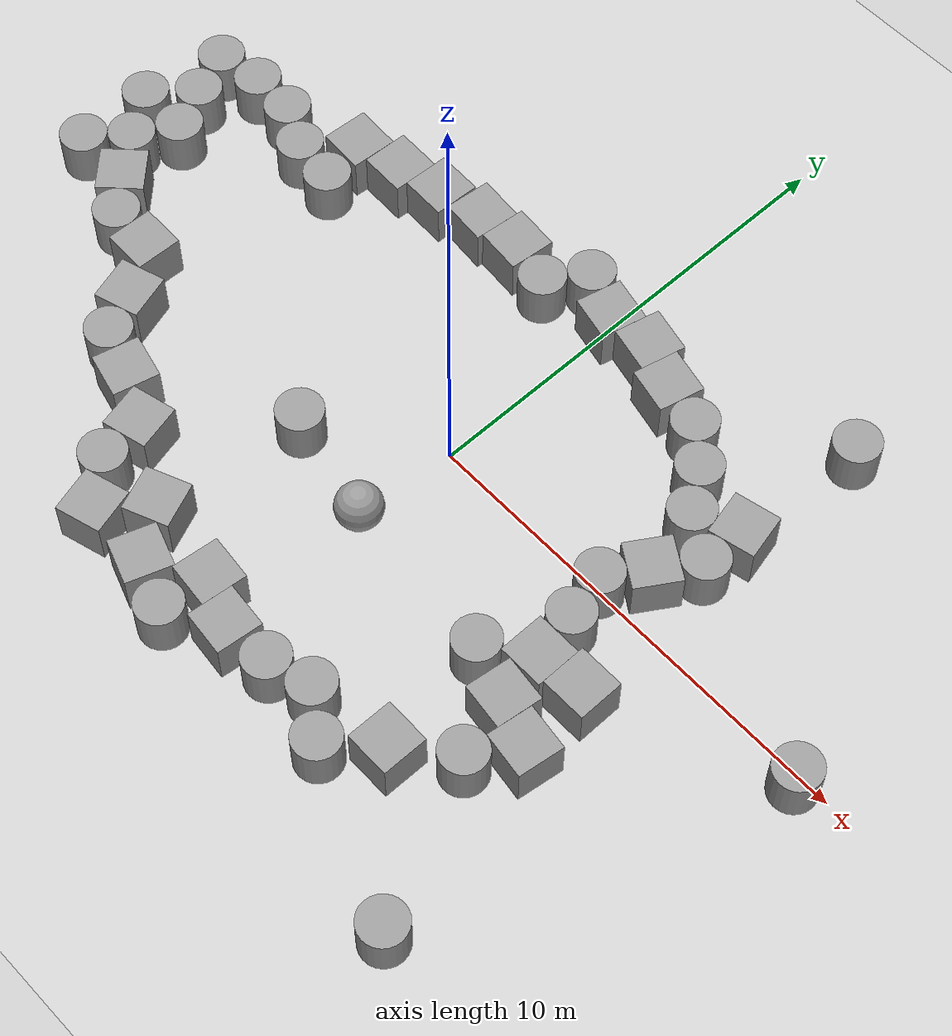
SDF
<sdf version="1.7">
 <world name="default">
  <light name="sun" type="directional">
   <pose>0 0 10 0 -0 0</pose>
   <diffuse>0.8 0.8 0.8 1</diffuse>
   <specular>0.2 0.2 0.2 1</specular>
   <attenuation>
    <range>1000</range>
    <constant>0.9</constant>
    <linear>0.01</linear>
    <quadratic>0.001</quadratic>
   </attenuation>
   <direction>-0.5 0.1 -0.9</direction>
   <spot><inner_angle>0</inner_angle><outer_angle>0</outer_angle><falloff>0</falloff></spot>
  </light>
  <model name="ground_plane">
   <static>1</static>
   <link name="link">
    <collision name="collision">
     <geometry><plane><normal>0 0 1</normal><size>100 100</size></plane></geometry>
     <surface>
      <contact><collide_bitmask>65535</collide_bitmask></contact>
      <friction><ode><mu>100</mu><mu2>50</mu2></ode></friction>
     </surface>
    </collision>
    <visual name="visual">
     <cast_shadows>0</cast_shadows>
     <geometry><plane><normal>0 0 1</normal><size>100 100</size></plane></geometry>
     <material>
      <script><uri>file://media/materials/scripts/gazebo.material</uri><name>Gazebo/Grey</name></script>
     </material>
    </visual>
   </link>
  </model>
  <gravity>0 0 -9.8</gravity>
  <magnetic_field>6e-06 2.3e-05 -4.2e-05</magnetic_field>
  <atmosphere type="adiabatic"/>
  <physics type="ode">
   <max_step_size>0.001</max_step_size>
   <real_time_factor>1</real_time_factor>
   <real_time_update_rate>1000</real_time_update_rate>
  </physics>
  <scene><ambient>0.4 0.4 0.4 1</ambient><background>0.7 0.7 0.7 1</background><shadows>1</shadows></scene>
  <audio><device>default</device></audio>
  <spherical_coordinates>
   <surface_model>EARTH_WGS84</surface_model>
   <latitude_deg>0</latitude_deg>
   <longitude_deg>0</longitude_deg>
   <elevation>0</elevation>
   <heading_deg>0</heading_deg>
  </spherical_coordinates>
  <model name="unit_cylinder">
   <pose>3.11485 -6.12273 0.500901 -0.001501 -0.001009 0.882739</pose>
   <link name="link">
    <inertial>
     <mass>1</mass>
     <inertia><ixx>0.145833</ixx><ixy>0</ixy><ixz>0</ixz><iyy>0.145833</iyy><iyz>0</iyz><izz>0.125</izz></inertia>
    </inertial>
    <collision name="collision">
     <geometry><cylinder><radius>0.5</radius><length>1</length></cylinder></geometry>
    </collision>
    <visual name="visual">
     <geometry><cylinder><radius>0.5</radius><length>1</length></cylinder></geometry>
     <material>
      <script><name>Gazebo/Grey</name><uri>file://media/materials/scripts/gazebo.material</uri></script>
     </material>
    </visual>
   </link>
  </model>
  <model name="unit_cylinder_0">
   <pose>5.10641 -4.37819 0.499996 3e-06 1e-06 -0.070556</pose>
   <link name="link">
    <inertial>
     <mass>1</mass>
     <inertia><ixx>0.145833</ixx><ixy>0</ixy><ixz>0</ixz><iyy>0.145833</iyy><iyz>0</iyz><izz>0.125</izz></inertia>
    </inertial>
    <collision name="collision">
     <geometry><cylinder><radius>0.5</radius><length>1</length></cylinder></geometry>
    </collision>
    <visual name="visual">
     <geometry><cylinder><radius>0.5</radius><length>1</length></cylinder></geometry>
     <material>
      <script><name>Gazebo/Grey</name><uri>file://media/materials/scripts/gazebo.material</uri></script>
     </material>
    </visual>
   </link>
  </model>
  <model name="unit_cylinder_1">
   <pose>-2.31501 -1.83064 0.499994 -3e-06 -1e-06 -0</pose>
   <link name="link">
    <inertial>
     <mass>1</mass>
     <inertia><ixx>0.145833</ixx><ixy>0</ixy><ixz>0</ixz><iyy>0.145833</iyy><iyz>0</iyz><izz>0.125</izz></inertia>
    </inertial>
    <collision name="collision">
     <geometry><cylinder><radius>0.5</radius><length>1</length></cylinder></geometry>
    </collision>
    <visual name="visual">
     <geometry><cylinder><radius>0.5</radius><length>1</length></cylinder></geometry>
     <material>
      <script><name>Gazebo/Grey</name><uri>file://media/materials/scripts/gazebo.material</uri></script>
     </material>
    </visual>
   </link>
  </model>
  <model name="unit_box">
   <pose>-5.38043 -3.66271 0.5 0 0 -0.238635</pose>
   <link name="link">
    <inertial>
     <mass>1</mass>
     <inertia>
      <ixx>0.166667</ixx>
      <ixy>0</ixy>
      <ixz>0</ixz>
      <iyy>0.166667</iyy>
      <iyz>0</iyz>
      <izz>0.166667</izz>
     </inertia>
    </inertial>
    <collision name="collision"><geometry><box><size>1 1 1</size></box></geometry></collision>
    <visual name="visual">
     <geometry><box><size>1 1 1</size></box></geometry>
     <material>
      <script><name>Gazebo/Grey</name><uri>file://media/materials/scripts/gazebo.material</uri></script>
     </material>
    </visual>
   </link>
  </model>
  <model name="unit_box_0">
   <pose>-2.6748 -5.08006 0.5 0 -0 0.397561</pose>
   <link name="link">
    <inertial>
     <mass>1</mass>
     <inertia>
      <ixx>0.166667</ixx>
      <ixy>0</ixy>
      <ixz>0</ixz>
      <iyy>0.166667</iyy>
      <iyz>0</iyz>
      <izz>0.166667</izz>
     </inertia>
    </inertial>
    <collision name="collision"><geometry><box><size>1 1 1</size></box></geometry></collision>
    <visual name="visual">
     <geometry><box><size>1 1 1</size></box></geometry>
     <material>
      <script><name>Gazebo/Grey</name><uri>file://media/materials/scripts/gazebo.material</uri></script>
     </material>
    </visual>
   </link>
  </model>
  <model name="unit_box_1">
   <pose>-0.755334 -5.38736 0.499996 -0 9e-06 -0.101758</pose>
   <link name="link">
    <inertial>
     <mass>1</mass>
     <inertia>
      <ixx>0.166667</ixx>
      <ixy>0</ixy>
      <ixz>0</ixz>
      <iyy>0.166667</iyy>
      <iyz>0</iyz>
      <izz>0.166667</izz>
     </inertia>
    </inertial>
    <collision name="collision"><geometry><box><size>1 1 1</size></box></geometry></collision>
    <visual name="visual">
     <geometry><box><size>1 1 1</size></box></geometry>
     <material>
      <script><name>Gazebo/Grey</name><uri>file://media/materials/scripts/gazebo.material</uri></script>
     </material>
    </visual>
   </link>
  </model>
  <model name="unit_box_2">
   <pose>4.59415 -2.0162 0.499995 1e-05 0 0.002279</pose>
   <link name="link">
    <inertial>
     <mass>1</mass>
     <inertia>
      <ixx>0.166667</ixx>
      <ixy>0</ixy>
      <ixz>0</ixz>
      <iyy>0.166667</iyy>
      <iyz>0</iyz>
      <izz>0.166667</izz>
     </inertia>
    </inertial>
    <collision name="collision"><geometry><box><size>1 1 1</size></box></geometry></collision>
    <visual name="visual">
     <geometry><box><size>1 1 1</size></box></geometry>
     <material>
      <script><name>Gazebo/Grey</name><uri>file://media/materials/scripts/gazebo.material</uri></script>
     </material>
    </visual>
   </link>
  </model>
  <model name="unit_cylinder_2">
   <pose>-1.42799 3.81989 0.499992 -2e-06 4e-06 0.279191</pose>
   <link name="link">
    <inertial>
     <mass>1</mass>
     <inertia><ixx>0.145833</ixx><ixy>0</ixy><ixz>0</ixz><iyy>0.145833</iyy><iyz>0</iyz><izz>0.125</izz></inertia>
    </inertial>
    <collision name="collision">
     <geometry><cylinder><radius>0.5</radius><length>1</length></cylinder></geometry>
    </collision>
    <visual name="visual">
     <geometry><cylinder><radius>0.5</radius><length>1</length></cylinder></geometry>
     <material>
      <script><name>Gazebo/Grey</name><uri>file://media/materials/scripts/gazebo.material</uri></script>
     </material>
    </visual>
   </link>
  </model>
  <model name="unit_box_3">
   <pose>4.69538 0.800661 0.5 0 0 -0.566337</pose>
   <link name="link">
    <inertial>
     <mass>1</mass>
     <inertia>
      <ixx>0.166667</ixx>
      <ixy>0</ixy>
      <ixz>0</ixz>
      <iyy>0.166667</iyy>
      <iyz>0</iyz>
      <izz>0.166667</izz>
     </inertia>
    </inertial>
    <collision name="collision"><geometry><box><size>1 1 1</size></box></geometry></collision>
    <visual name="visual">
     <geometry><box><size>1 1 1</size></box></geometry>
     <material>
      <script><name>Gazebo/Grey</name><uri>file://media/materials/scripts/gazebo.material</uri></script>
     </material>
    </visual>
   </link>
  </model>
  <model name="unit_cylinder_4">
   <pose>-6.30975 2.36731 0.499994 -4e-06 2e-06 0.055566</pose>
   <link name="link">
    <inertial>
     <mass>1</mass>
     <inertia><ixx>0.145833</ixx><ixy>0</ixy><ixz>0</ixz><iyy>0.145833</iyy><iyz>0</iyz><izz>0.125</izz></inertia>
    </inertial>
    <collision name="collision">
     <geometry><cylinder><radius>0.5</radius><length>1</length></cylinder></geometry>
    </collision>
    <visual name="visual">
     <geometry><cylinder><radius>0.5</radius><length>1</length></cylinder></geometry>
     <material>
      <script><name>Gazebo/Grey</name><uri>file://media/materials/scripts/gazebo.material</uri></script>
     </material>
    </visual>
   </link>
  </model>
  <model name="unit_cylinder_5">
   <pose>-10.5105 -0.676053 0.499992 -3e-06 2e-06 -0.258467</pose>
   <link name="link">
    <inertial>
     <mass>1</mass>
     <inertia><ixx>0.145833</ixx><ixy>0</ixy><ixz>0</ixz><iyy>0.145833</iyy><iyz>0</iyz><izz>0.125</izz></inertia>
    </inertial>
    <collision name="collision">
     <geometry><cylinder><radius>0.5</radius><length>1</length></cylinder></geometry>
    </collision>
    <visual name="visual">
     <geometry><cylinder><radius>0.5</radius><length>1</length></cylinder></geometry>
     <material>
      <script><name>Gazebo/Grey</name><uri>file://media/materials/scripts/gazebo.material</uri></script>
     </material>
    </visual>
   </link>
  </model>
  <model name="unit_cylinder_8">
   <pose>-10.5245 0.990949 0.50432 0.002429 -0.008335 -1.02696</pose>
   <link name="link">
    <inertial>
     <mass>1</mass>
     <inertia><ixx>0.145833</ixx><ixy>0</ixy><ixz>0</ixz><iyy>0.145833</iyy><iyz>0</iyz><izz>0.125</izz></inertia>
    </inertial>
    <collision name="collision">
     <geometry><cylinder><radius>0.5</radius><length>1</length></cylinder></geometry>
    </collision>
    <visual name="visual">
     <geometry><cylinder><radius>0.5</radius><length>1</length></cylinder></geometry>
     <material>
      <script><name>Gazebo/Grey</name><uri>file://media/materials/scripts/gazebo.material</uri></script>
     </material>
    </visual>
   </link>
  </model>
  <model name="unit_cylinder_9">
   <pose>-9.82454 1.86312 0.499998 3e-06 -2e-06 0.091242</pose>
   <link name="link">
    <inertial>
     <mass>1</mass>
     <inertia><ixx>0.145833</ixx><ixy>0</ixy><ixz>0</ixz><iyy>0.145833</iyy><iyz>0</iyz><izz>0.125</izz></inertia>
    </inertial>
    <collision name="collision">
     <geometry><cylinder><radius>0.5</radius><length>1</length></cylinder></geometry>
    </collision>
    <visual name="visual">
     <geometry><cylinder><radius>0.5</radius><length>1</length></cylinder></geometry>
     <material>
      <script><name>Gazebo/Grey</name><uri>file://media/materials/scripts/gazebo.material</uri></script>
     </material>
    </visual>
   </link>
  </model>
  <model name="unit_cylinder_10">
   <pose>-8.5216 -1.39437 0.499992 -3e-06 2e-06 0.125939</pose>
   <link name="link">
    <inertial>
     <mass>1</mass>
     <inertia><ixx>0.145833</ixx><ixy>0</ixy><ixz>0</ixz><iyy>0.145833</iyy><iyz>0</iyz><izz>0.125</izz></inertia>
    </inertial>
    <collision name="collision">
     <geometry><cylinder><radius>0.5</radius><length>1</length></cylinder></geometry>
    </collision>
    <visual name="visual">
     <geometry><cylinder><radius>0.5</radius><length>1</length></cylinder></geometry>
     <material>
      <script><name>Gazebo/Grey</name><uri>file://media/materials/scripts/gazebo.material</uri></script>
     </material>
    </visual>
   </link>
  </model>
  <model name="unit_box_4">
   <pose>-9.22329 -0.681301 0.5 0 0 -0.794618</pose>
   <link name="link">
    <inertial>
     <mass>1</mass>
     <inertia>
      <ixx>0.166667</ixx>
      <ixy>0</ixy>
      <ixz>0</ixz>
      <iyy>0.166667</iyy>
      <iyz>0</iyz>
      <izz>0.166667</izz>
     </inertia>
    </inertial>
    <collision name="collision"><geometry><box><size>1 1 1</size></box></geometry></collision>
    <visual name="visual">
     <geometry><box><size>1 1 1</size></box></geometry>
     <material>
      <script><name>Gazebo/Grey</name><uri>file://media/materials/scripts/gazebo.material</uri></script>
     </material>
    </visual>
   </link>
  </model>
  <model name="unit_cylinder_11">
   <pose>-9.86764 0.090085 0.499992 -3e-06 2e-06 0.112748</pose>
   <link name="link">
    <inertial>
     <mass>1</mass>
     <inertia><ixx>0.145833</ixx><ixy>0</ixy><ixz>0</ixz><iyy>0.145833</iyy><iyz>0</iyz><izz>0.125</izz></inertia>
    </inertial>
    <collision name="collision">
     <geometry><cylinder><radius>0.5</radius><length>1</length></cylinder></geometry>
    </collision>
    <visual name="visual">
     <geometry><cylinder><radius>0.5</radius><length>1</length></cylinder></geometry>
     <material>
      <script><name>Gazebo/Grey</name><uri>file://media/materials/scripts/gazebo.material</uri></script>
     </material>
    </visual>
   </link>
  </model>
  <model name="unit_cylinder_12">
   <pose>-9.37799 0.9672 0.499992 -3e-06 2e-06 0.049158</pose>
   <link name="link">
    <inertial>
     <mass>1</mass>
     <inertia><ixx>0.145833</ixx><ixy>0</ixy><ixz>0</ixz><iyy>0.145833</iyy><iyz>0</iyz><izz>0.125</izz></inertia>
    </inertial>
    <collision name="collision">
     <geometry><cylinder><radius>0.5</radius><length>1</length></cylinder></geometry>
    </collision>
    <visual name="visual">
     <geometry><cylinder><radius>0.5</radius><length>1</length></cylinder></geometry>
     <material>
      <script><name>Gazebo/Grey</name><uri>file://media/materials/scripts/gazebo.material</uri></script>
     </material>
    </visual>
   </link>
  </model>
  <model name="unit_box_5">
   <pose>-7.52267 -1.47117 0.499995 1e-05 -0 -0.02118</pose>
   <link name="link">
    <inertial>
     <mass>1</mass>
     <inertia>
      <ixx>0.166667</ixx>
      <ixy>0</ixy>
      <ixz>0</ixz>
      <iyy>0.166667</iyy>
      <iyz>0</iyz>
      <izz>0.166667</izz>
     </inertia>
    </inertial>
    <collision name="collision"><geometry><box><size>1 1 1</size></box></geometry></collision>
    <visual name="visual">
     <geometry><box><size>1 1 1</size></box></geometry>
     <material>
      <script><name>Gazebo/Grey</name><uri>file://media/materials/scripts/gazebo.material</uri></script>
     </material>
    </visual>
   </link>
  </model>
  <model name="unit_box_6">
   <pose>-6.79895 -2.43248 0.499996 0 -8e-06 0.300765</pose>
   <link name="link">
    <inertial>
     <mass>1</mass>
     <inertia>
      <ixx>0.166667</ixx>
      <ixy>0</ixy>
      <ixz>0</ixz>
      <iyy>0.166667</iyy>
      <iyz>0</iyz>
      <izz>0.166667</izz>
     </inertia>
    </inertial>
    <collision name="collision"><geometry><box><size>1 1 1</size></box></geometry></collision>
    <visual name="visual">
     <geometry><box><size>1 1 1</size></box></geometry>
     <material>
      <script><name>Gazebo/Grey</name><uri>file://media/materials/scripts/gazebo.material</uri></script>
     </material>
    </visual>
   </link>
  </model>
  <model name="unit_cylinder_13">
   <pose>-6.33653 -3.33923 0.499996 3e-06 1e-06 -0.050899</pose>
   <link name="link">
    <inertial>
     <mass>1</mass>
     <inertia><ixx>0.145833</ixx><ixy>0</ixy><ixz>0</ixz><iyy>0.145833</iyy><iyz>0</iyz><izz>0.125</izz></inertia>
    </inertial>
    <collision name="collision">
     <geometry><cylinder><radius>0.5</radius><length>1</length></cylinder></geometry>
    </collision>
    <visual name="visual">
     <geometry><cylinder><radius>0.5</radius><length>1</length></cylinder></geometry>
     <material>
      <script><name>Gazebo/Grey</name><uri>file://media/materials/scripts/gazebo.material</uri></script>
     </material>
    </visual>
   </link>
  </model>
  <model name="unit_box_7">
   <pose>-4.30232 -4.20362 0.499999 -2e-06 -0 0.245898</pose>
   <link name="link">
    <inertial>
     <mass>1</mass>
     <inertia>
      <ixx>0.166667</ixx>
      <ixy>0</ixy>
      <ixz>0</ixz>
      <iyy>0.166667</iyy>
      <iyz>0</iyz>
      <izz>0.166667</izz>
     </inertia>
    </inertial>
    <collision name="collision"><geometry><box><size>1 1 1</size></box></geometry></collision>
    <visual name="visual">
     <geometry><box><size>1 1 1</size></box></geometry>
     <material>
      <script><name>Gazebo/Grey</name><uri>file://media/materials/scripts/gazebo.material</uri></script>
     </material>
    </visual>
   </link>
  </model>
  <model name="unit_cylinder_14">
   <pose>-4.17187 -5.20214 0.499994 -3e-06 -2e-06 -0.301955</pose>
   <link name="link">
    <inertial>
     <mass>1</mass>
     <inertia><ixx>0.145833</ixx><ixy>0</ixy><ixz>0</ixz><iyy>0.145833</iyy><iyz>0</iyz><izz>0.125</izz></inertia>
    </inertial>
    <collision name="collision">
     <geometry><cylinder><radius>0.5</radius><length>1</length></cylinder></geometry>
    </collision>
    <visual name="visual">
     <geometry><cylinder><radius>0.5</radius><length>1</length></cylinder></geometry>
     <material>
      <script><name>Gazebo/Grey</name><uri>file://media/materials/scripts/gazebo.material</uri></script>
     </material>
    </visual>
   </link>
  </model>
  <model name="unit_box_8">
   <pose>-3.43631 -6.0308 0.499999 5e-06 3e-06 0.280792</pose>
   <link name="link">
    <inertial>
     <mass>1</mass>
     <inertia>
      <ixx>0.166667</ixx>
      <ixy>0</ixy>
      <ixz>0</ixz>
      <iyy>0.166667</iyy>
      <iyz>0</iyz>
      <izz>0.166667</izz>
     </inertia>
    </inertial>
    <collision name="collision"><geometry><box><size>1 1 1</size></box></geometry></collision>
    <visual name="visual">
     <geometry><box><size>1 1 1</size></box></geometry>
     <material>
      <script><name>Gazebo/Grey</name><uri>file://media/materials/scripts/gazebo.material</uri></script>
     </material>
    </visual>
   </link>
  </model>
  <model name="unit_box_9">
   <pose>-1.93277 -6.07648 0.5 -2e-06 -2e-06 -0.3319</pose>
   <link name="link">
    <inertial>
     <mass>1</mass>
     <inertia>
      <ixx>0.166667</ixx>
      <ixy>0</ixy>
      <ixz>0</ixz>
      <iyy>0.166667</iyy>
      <iyz>0</iyz>
      <izz>0.166667</izz>
     </inertia>
    </inertial>
    <collision name="collision"><geometry><box><size>1 1 1</size></box></geometry></collision>
    <visual name="visual">
     <geometry><box><size>1 1 1</size></box></geometry>
     <material>
      <script><name>Gazebo/Grey</name><uri>file://media/materials/scripts/gazebo.material</uri></script>
     </material>
    </visual>
   </link>
  </model>
  <model name="unit_cylinder_15">
   <pose>-0.899488 -6.48619 0.499993 -4e-06 -1e-06 0.103692</pose>
   <link name="link">
    <inertial>
     <mass>1</mass>
     <inertia><ixx>0.145833</ixx><ixy>0</ixy><ixz>0</ixz><iyy>0.145833</iyy><iyz>0</iyz><izz>0.125</izz></inertia>
    </inertial>
    <collision name="collision">
     <geometry><cylinder><radius>0.5</radius><length>1</length></cylinder></geometry>
    </collision>
    <visual name="visual">
     <geometry><cylinder><radius>0.5</radius><length>1</length></cylinder></geometry>
     <material>
      <script><name>Gazebo/Grey</name><uri>file://media/materials/scripts/gazebo.material</uri></script>
     </material>
    </visual>
   </link>
  </model>
  <model name="unit_box_10">
   <pose>0.206187 -5.81808 0.499996 0 9e-06 -0.101773</pose>
   <link name="link">
    <inertial>
     <mass>1</mass>
     <inertia>
      <ixx>0.166667</ixx>
      <ixy>0</ixy>
      <ixz>0</ixz>
      <iyy>0.166667</iyy>
      <iyz>0</iyz>
      <izz>0.166667</izz>
     </inertia>
    </inertial>
    <collision name="collision"><geometry><box><size>1 1 1</size></box></geometry></collision>
    <visual name="visual">
     <geometry><box><size>1 1 1</size></box></geometry>
     <material>
      <script><name>Gazebo/Grey</name><uri>file://media/materials/scripts/gazebo.material</uri></script>
     </material>
    </visual>
   </link>
  </model>
  <model name="unit_cylinder_16">
   <pose>1.27591 -5.74112 0.499993 -3e-06 -1e-06 0.045007</pose>
   <link name="link">
    <inertial>
     <mass>1</mass>
     <inertia><ixx>0.145833</ixx><ixy>0</ixy><ixz>0</ixz><iyy>0.145833</iyy><iyz>0</iyz><izz>0.125</izz></inertia>
    </inertial>
    <collision name="collision">
     <geometry><cylinder><radius>0.5</radius><length>1</length></cylinder></geometry>
    </collision>
    <visual name="visual">
     <geometry><cylinder><radius>0.5</radius><length>1</length></cylinder></geometry>
     <material>
      <script><name>Gazebo/Grey</name><uri>file://media/materials/scripts/gazebo.material</uri></script>
     </material>
    </visual>
   </link>
  </model>
  <model name="unit_cylinder_17">
   <pose>2.24009 -5.47511 0.499996 3e-06 -0 0.387368</pose>
   <link name="link">
    <inertial>
     <mass>1</mass>
     <inertia><ixx>0.145833</ixx><ixy>0</ixy><ixz>0</ixz><iyy>0.145833</iyy><iyz>0</iyz><izz>0.125</izz></inertia>
    </inertial>
    <collision name="collision">
     <geometry><cylinder><radius>0.5</radius><length>1</length></cylinder></geometry>
    </collision>
    <visual name="visual">
     <geometry><cylinder><radius>0.5</radius><length>1</length></cylinder></geometry>
     <material>
      <script><name>Gazebo/Grey</name><uri>file://media/materials/scripts/gazebo.material</uri></script>
     </material>
    </visual>
   </link>
  </model>
  <model name="unit_box_11">
   <pose>4.00204 -5.22206 0.499995 1e-05 0 -0.009211</pose>
   <link name="link">
    <inertial>
     <mass>1</mass>
     <inertia>
      <ixx>0.166667</ixx>
      <ixy>0</ixy>
      <ixz>0</ixz>
      <iyy>0.166667</iyy>
      <iyz>0</iyz>
      <izz>0.166667</izz>
     </inertia>
    </inertial>
    <collision name="collision"><geometry><box><size>1 1 1</size></box></geometry></collision>
    <visual name="visual">
     <geometry><box><size>1 1 1</size></box></geometry>
     <material>
      <script><name>Gazebo/Grey</name><uri>file://media/materials/scripts/gazebo.material</uri></script>
     </material>
    </visual>
   </link>
  </model>
  <model name="unit_box_12">
   <pose>4.76905 -3.07765 0.5 0 0 -0.130074</pose>
   <link name="link">
    <inertial>
     <mass>1</mass>
     <inertia>
      <ixx>0.166667</ixx>
      <ixy>0</ixy>
      <ixz>0</ixz>
      <iyy>0.166667</iyy>
      <iyz>0</iyz>
      <izz>0.166667</izz>
     </inertia>
    </inertial>
    <collision name="collision"><geometry><box><size>1 1 1</size></box></geometry></collision>
    <visual name="visual">
     <geometry><box><size>1 1 1</size></box></geometry>
     <material>
      <script><name>Gazebo/Grey</name><uri>file://media/materials/scripts/gazebo.material</uri></script>
     </material>
    </visual>
   </link>
  </model>
  <model name="unit_box_13">
   <pose>5.73118 -3.45444 0.499995 0 -1e-05 -0.141358</pose>
   <link name="link">
    <inertial>
     <mass>1</mass>
     <inertia>
      <ixx>0.166667</ixx>
      <ixy>0</ixy>
      <ixz>0</ixz>
      <iyy>0.166667</iyy>
      <iyz>0</iyz>
      <izz>0.166667</izz>
     </inertia>
    </inertial>
    <collision name="collision"><geometry><box><size>1 1 1</size></box></geometry></collision>
    <visual name="visual">
     <geometry><box><size>1 1 1</size></box></geometry>
     <material>
      <script><name>Gazebo/Grey</name><uri>file://media/materials/scripts/gazebo.material</uri></script>
     </material>
    </visual>
   </link>
  </model>
  <model name="unit_box_14">
   <pose>5.59429 -1.90812 0.499995 -1e-05 0 0.002283</pose>
   <link name="link">
    <inertial>
     <mass>1</mass>
     <inertia>
      <ixx>0.166667</ixx>
      <ixy>0</ixy>
      <ixz>0</ixz>
      <iyy>0.166667</iyy>
      <iyz>0</iyz>
      <izz>0.166667</izz>
     </inertia>
    </inertial>
    <collision name="collision"><geometry><box><size>1 1 1</size></box></geometry></collision>
    <visual name="visual">
     <geometry><box><size>1 1 1</size></box></geometry>
     <material>
      <script><name>Gazebo/Grey</name><uri>file://media/materials/scripts/gazebo.material</uri></script>
     </material>
    </visual>
   </link>
  </model>
  <model name="unit_cylinder_18">
   <pose>3.62491 -2.6871 0.499992 -3e-06 2e-06 0.134264</pose>
   <link name="link">
    <inertial>
     <mass>1</mass>
     <inertia><ixx>0.145833</ixx><ixy>0</ixy><ixz>0</ixz><iyy>0.145833</iyy><iyz>0</iyz><izz>0.125</izz></inertia>
    </inertial>
    <collision name="collision">
     <geometry><cylinder><radius>0.5</radius><length>1</length></cylinder></geometry>
    </collision>
    <visual name="visual">
     <geometry><cylinder><radius>0.5</radius><length>1</length></cylinder></geometry>
     <material>
      <script><name>Gazebo/Grey</name><uri>file://media/materials/scripts/gazebo.material</uri></script>
     </material>
    </visual>
   </link>
  </model>
  <model name="unit_cylinder_19">
   <pose>4.40454 -1.01495 0.499996 4e-06 1e-06 0.085321</pose>
   <link name="link">
    <inertial>
     <mass>1</mass>
     <inertia><ixx>0.145833</ixx><ixy>0</ixy><ixz>0</ixz><iyy>0.145833</iyy><iyz>0</iyz><izz>0.125</izz></inertia>
    </inertial>
    <collision name="collision">
     <geometry><cylinder><radius>0.5</radius><length>1</length></cylinder></geometry>
    </collision>
    <visual name="visual">
     <geometry><cylinder><radius>0.5</radius><length>1</length></cylinder></geometry>
     <material>
      <script><name>Gazebo/Grey</name><uri>file://media/materials/scripts/gazebo.material</uri></script>
     </material>
    </visual>
   </link>
  </model>
  <model name="unit_cylinder_20">
   <pose>4.16122 -0.044751 0.499991 0 -0 0.014832</pose>
   <link name="link">
    <inertial>
     <mass>1</mass>
     <inertia><ixx>0.145833</ixx><ixy>0</ixy><ixz>0</ixz><iyy>0.145833</iyy><iyz>0</iyz><izz>0.125</izz></inertia>
    </inertial>
    <collision name="collision">
     <geometry><cylinder><radius>0.5</radius><length>1</length></cylinder></geometry>
    </collision>
    <visual name="visual">
     <geometry><cylinder><radius>0.5</radius><length>1</length></cylinder></geometry>
     <material>
      <script><name>Gazebo/Grey</name><uri>file://media/materials/scripts/gazebo.material</uri></script>
     </material>
    </visual>
   </link>
  </model>
  <model name="unit_cylinder_3">
   <pose>5.50091 5.55152 0.499996 -3e-06 3e-06 0</pose>
   <link name="link">
    <inertial>
     <mass>1</mass>
     <inertia><ixx>0.145833</ixx><ixy>0</ixy><ixz>0</ixz><iyy>0.145833</iyy><iyz>0</iyz><izz>0.125</izz></inertia>
    </inertial>
    <collision name="collision">
     <geometry><cylinder><radius>0.5</radius><length>1</length></cylinder></geometry>
    </collision>
    <visual name="visual">
     <geometry><cylinder><radius>0.5</radius><length>1</length></cylinder></geometry>
     <material>
      <script><name>Gazebo/Grey</name><uri>file://media/materials/scripts/gazebo.material</uri></script>
     </material>
    </visual>
   </link>
  </model>
  <model name="unit_cylinder_6">
   <pose>6.51583 -7.57573 0.499996 -3e-06 3e-06 0</pose>
   <link name="link">
    <inertial>
     <mass>1</mass>
     <inertia><ixx>0.145833</ixx><ixy>0</ixy><ixz>0</ixz><iyy>0.145833</iyy><iyz>0</iyz><izz>0.125</izz></inertia>
    </inertial>
    <collision name="collision">
     <geometry><cylinder><radius>0.5</radius><length>1</length></cylinder></geometry>
    </collision>
    <visual name="visual">
     <geometry><cylinder><radius>0.5</radius><length>1</length></cylinder></geometry>
     <material>
      <script><name>Gazebo/Grey</name><uri>file://media/materials/scripts/gazebo.material</uri></script>
     </material>
    </visual>
   </link>
  </model>
  <model name="unit_cylinder_7">
   <pose>9.3797 -0.241947 0.499996 4e-06 4e-06 -0</pose>
   <link name="link">
    <inertial>
     <mass>1</mass>
     <inertia><ixx>0.145833</ixx><ixy>0</ixy><ixz>0</ixz><iyy>0.145833</iyy><iyz>0</iyz><izz>0.125</izz></inertia>
    </inertial>
    <collision name="collision">
     <geometry><cylinder><radius>0.5</radius><length>1</length></cylinder></geometry>
    </collision>
    <visual name="visual">
     <geometry><cylinder><radius>0.5</radius><length>1</length></cylinder></geometry>
     <material>
      <script><name>Gazebo/Grey</name><uri>file://media/materials/scripts/gazebo.material</uri></script>
     </material>
    </visual>
   </link>
  </model>
  <model name="unit_cylinder_21">
   <pose>5.30001 1.60308 0.499994 5e-06 -1e-06 -0.454593</pose>
   <link name="link">
    <inertial>
     <mass>1</mass>
     <inertia><ixx>0.145833</ixx><ixy>0</ixy><ixz>0</ixz><iyy>0.145833</iyy><iyz>0</iyz><izz>0.125</izz></inertia>
    </inertial>
    <collision name="collision">
     <geometry><cylinder><radius>0.5</radius><length>1</length></cylinder></geometry>
    </collision>
    <visual name="visual">
     <geometry><cylinder><radius>0.5</radius><length>1</length></cylinder></geometry>
     <material>
      <script><name>Gazebo/Grey</name><uri>file://media/materials/scripts/gazebo.material</uri></script>
     </material>
    </visual>
   </link>
  </model>
  <model name="unit_cylinder_22">
   <pose>4.38364 2.16429 0.499997 4e-06 -2e-06 -0.123408</pose>
   <link name="link">
    <inertial>
     <mass>1</mass>
     <inertia><ixx>0.145833</ixx><ixy>0</ixy><ixz>0</ixz><iyy>0.145833</iyy><iyz>0</iyz><izz>0.125</izz></inertia>
    </inertial>
    <collision name="collision">
     <geometry><cylinder><radius>0.5</radius><length>1</length></cylinder></geometry>
    </collision>
    <visual name="visual">
     <geometry><cylinder><radius>0.5</radius><length>1</length></cylinder></geometry>
     <material>
      <script><name>Gazebo/Grey</name><uri>file://media/materials/scripts/gazebo.material</uri></script>
     </material>
    </visual>
   </link>
  </model>
  <model name="unit_box_15">
   <pose>5.30426 2.62929 0.500002 0 4e-06 0.222042</pose>
   <link name="link">
    <inertial>
     <mass>1</mass>
     <inertia>
      <ixx>0.166667</ixx>
      <ixy>0</ixy>
      <ixz>0</ixz>
      <iyy>0.166667</iyy>
      <iyz>0</iyz>
      <izz>0.166667</izz>
     </inertia>
    </inertial>
    <collision name="collision"><geometry><box><size>1 1 1</size></box></geometry></collision>
    <visual name="visual">
     <geometry><box><size>1 1 1</size></box></geometry>
     <material>
      <script><name>Gazebo/Grey</name><uri>file://media/materials/scripts/gazebo.material</uri></script>
     </material>
    </visual>
   </link>
  </model>
  <model name="unit_sphere">
   <pose>-0.144426 -2.23815 0.5 0 -0 0</pose>
   <link name="link">
    <inertial>
     <mass>1</mass>
     <inertia><ixx>0.1</ixx><ixy>0</ixy><ixz>0</ixz><iyy>0.1</iyy><iyz>0</iyz><izz>0.1</izz></inertia>
    </inertial>
    <collision name="collision"><geometry><sphere><radius>0.5</radius></sphere></geometry></collision>
    <visual name="visual">
     <geometry><sphere><radius>0.5</radius></sphere></geometry>
     <material>
      <script><name>Gazebo/Grey</name><uri>file://media/materials/scripts/gazebo.material</uri></script>
     </material>
    </visual>
   </link>
  </model>
  <model name="unit_cylinder_23">
   <pose>3.7968 2.97401 0.5 0 0 -0.129986</pose>
   <link name="link">
    <inertial>
     <mass>1</mass>
     <inertia><ixx>0.145833</ixx><ixy>0</ixy><ixz>0</ixz><iyy>0.145833</iyy><iyz>0</iyz><izz>0.125</izz></inertia>
    </inertial>
    <collision name="collision">
     <geometry><cylinder><radius>0.5</radius><length>1</length></cylinder></geometry>
    </collision>
    <visual name="visual">
     <geometry><cylinder><radius>0.5</radius><length>1</length></cylinder></geometry>
     <material>
      <script><name>Gazebo/Grey</name><uri>file://media/materials/scripts/gazebo.material</uri></script>
     </material>
    </visual>
   </link>
  </model>
  <model name="unit_cylinder_24">
   <pose>3.03544 3.62234 0.499998 2e-06 -3e-06 0.14001</pose>
   <link name="link">
    <inertial>
     <mass>1</mass>
     <inertia><ixx>0.145833</ixx><ixy>0</ixy><ixz>0</ixz><iyy>0.145833</iyy><iyz>0</iyz><izz>0.125</izz></inertia>
    </inertial>
    <collision name="collision">
     <geometry><cylinder><radius>0.5</radius><length>1</length></cylinder></geometry>
    </collision>
    <visual name="visual">
     <geometry><cylinder><radius>0.5</radius><length>1</length></cylinder></geometry>
     <material>
      <script><name>Gazebo/Grey</name><uri>file://media/materials/scripts/gazebo.material</uri></script>
     </material>
    </visual>
   </link>
  </model>
  <model name="unit_box_16">
   <pose>2.06726 3.87348 0.499996 9e-06 -0 -0.233146</pose>
   <link name="link">
    <inertial>
     <mass>1</mass>
     <inertia>
      <ixx>0.166667</ixx>
      <ixy>0</ixy>
      <ixz>0</ixz>
      <iyy>0.166667</iyy>
      <iyz>0</iyz>
      <izz>0.166667</izz>
     </inertia>
    </inertial>
    <collision name="collision"><geometry><box><size>1 1 1</size></box></geometry></collision>
    <visual name="visual">
     <geometry><box><size>1 1 1</size></box></geometry>
     <material>
      <script><name>Gazebo/Grey</name><uri>file://media/materials/scripts/gazebo.material</uri></script>
     </material>
    </visual>
   </link>
  </model>
  <model name="unit_box_17">
   <pose>1.13833 4.28995 0.499998 4e-06 -1e-06 -0.233155</pose>
   <link name="link">
    <inertial>
     <mass>1</mass>
     <inertia>
      <ixx>0.166667</ixx>
      <ixy>0</ixy>
      <ixz>0</ixz>
      <iyy>0.166667</iyy>
      <iyz>0</iyz>
      <izz>0.166667</izz>
     </inertia>
    </inertial>
    <collision name="collision"><geometry><box><size>1 1 1</size></box></geometry></collision>
    <visual name="visual">
     <geometry><box><size>1 1 1</size></box></geometry>
     <material>
      <script><name>Gazebo/Grey</name><uri>file://media/materials/scripts/gazebo.material</uri></script>
     </material>
    </visual>
   </link>
  </model>
  <model name="unit_box_18">
   <pose>0.099593 4.24583 0.499996 9e-06 -0 -0.233989</pose>
   <link name="link">
    <inertial>
     <mass>1</mass>
     <inertia>
      <ixx>0.166667</ixx>
      <ixy>0</ixy>
      <ixz>0</ixz>
      <iyy>0.166667</iyy>
      <iyz>0</iyz>
      <izz>0.166667</izz>
     </inertia>
    </inertial>
    <collision name="collision"><geometry><box><size>1 1 1</size></box></geometry></collision>
    <visual name="visual">
     <geometry><box><size>1 1 1</size></box></geometry>
     <material>
      <script><name>Gazebo/Grey</name><uri>file://media/materials/scripts/gazebo.material</uri></script>
     </material>
    </visual>
   </link>
  </model>
  <model name="unit_cylinder_25">
   <pose>-0.837541 4.62714 0.499994 -4e-06 2e-06 -0.15927</pose>
   <link name="link">
    <inertial>
     <mass>1</mass>
     <inertia><ixx>0.145833</ixx><ixy>0</ixy><ixz>0</ixz><iyy>0.145833</iyy><iyz>0</iyz><izz>0.125</izz></inertia>
    </inertial>
    <collision name="collision">
     <geometry><cylinder><radius>0.5</radius><length>1</length></cylinder></geometry>
    </collision>
    <visual name="visual">
     <geometry><cylinder><radius>0.5</radius><length>1</length></cylinder></geometry>
     <material>
      <script><name>Gazebo/Grey</name><uri>file://media/materials/scripts/gazebo.material</uri></script>
     </material>
    </visual>
   </link>
  </model>
  <model name="unit_box_19">
   <pose>-2.41005 4.0592 0.5 0 0 -0.095495</pose>
   <link name="link">
    <inertial>
     <mass>1</mass>
     <inertia>
      <ixx>0.166667</ixx>
      <ixy>0</ixy>
      <ixz>0</ixz>
      <iyy>0.166667</iyy>
      <iyz>0</iyz>
      <izz>0.166667</izz>
     </inertia>
    </inertial>
    <collision name="collision"><geometry><box><size>1 1 1</size></box></geometry></collision>
    <visual name="visual">
     <geometry><box><size>1 1 1</size></box></geometry>
     <material>
      <script><name>Gazebo/Grey</name><uri>file://media/materials/scripts/gazebo.material</uri></script>
     </material>
    </visual>
   </link>
  </model>
  <model name="unit_box_20">
   <pose>-3.41758 4.03007 0.5 0 0 -0.095107</pose>
   <link name="link">
    <inertial>
     <mass>1</mass>
     <inertia>
      <ixx>0.166667</ixx>
      <ixy>0</ixy>
      <ixz>0</ixz>
      <iyy>0.166667</iyy>
      <iyz>0</iyz>
      <izz>0.166667</izz>
     </inertia>
    </inertial>
    <collision name="collision"><geometry><box><size>1 1 1</size></box></geometry></collision>
    <visual name="visual">
     <geometry><box><size>1 1 1</size></box></geometry>
     <material>
      <script><name>Gazebo/Grey</name><uri>file://media/materials/scripts/gazebo.material</uri></script>
     </material>
    </visual>
   </link>
  </model>
  <model name="unit_box_21">
   <pose>-4.45466 3.84741 0.499995 1e-05 -0 -0.037944</pose>
   <link name="link">
    <inertial>
     <mass>1</mass>
     <inertia>
      <ixx>0.166667</ixx>
      <ixy>0</ixy>
      <ixz>0</ixz>
      <iyy>0.166667</iyy>
      <iyz>0</iyz>
      <izz>0.166667</izz>
     </inertia>
    </inertial>
    <collision name="collision"><geometry><box><size>1 1 1</size></box></geometry></collision>
    <visual name="visual">
     <geometry><box><size>1 1 1</size></box></geometry>
     <material>
      <script><name>Gazebo/Grey</name><uri>file://media/materials/scripts/gazebo.material</uri></script>
     </material>
    </visual>
   </link>
  </model>
  <model name="unit_box_22">
   <pose>-5.46347 3.63428 0.499995 -0 1e-05 -0.037941</pose>
   <link name="link">
    <inertial>
     <mass>1</mass>
     <inertia>
      <ixx>0.166667</ixx>
      <ixy>0</ixy>
      <ixz>0</ixz>
      <iyy>0.166667</iyy>
      <iyz>0</iyz>
      <izz>0.166667</izz>
     </inertia>
    </inertial>
    <collision name="collision"><geometry><box><size>1 1 1</size></box></geometry></collision>
    <visual name="visual">
     <geometry><box><size>1 1 1</size></box></geometry>
     <material>
      <script><name>Gazebo/Grey</name><uri>file://media/materials/scripts/gazebo.material</uri></script>
     </material>
    </visual>
   </link>
  </model>
  <model name="unit_box_23">
   <pose>-6.48409 3.412 0.5 0 0 -0.058226</pose>
   <link name="link">
    <inertial>
     <mass>1</mass>
     <inertia>
      <ixx>0.166667</ixx>
      <ixy>0</ixy>
      <ixz>0</ixz>
      <iyy>0.166667</iyy>
      <iyz>0</iyz>
      <izz>0.166667</izz>
     </inertia>
    </inertial>
    <collision name="collision"><geometry><box><size>1 1 1</size></box></geometry></collision>
    <visual name="visual">
     <geometry><box><size>1 1 1</size></box></geometry>
     <material>
      <script><name>Gazebo/Grey</name><uri>file://media/materials/scripts/gazebo.material</uri></script>
     </material>
    </visual>
   </link>
  </model>
  <model name="unit_cylinder_26">
   <pose>-7.30263 2.48757 0.499991 0 -0 0.02944</pose>
   <link name="link">
    <inertial>
     <mass>1</mass>
     <inertia><ixx>0.145833</ixx><ixy>0</ixy><ixz>0</ixz><iyy>0.145833</iyy><iyz>0</iyz><izz>0.125</izz></inertia>
    </inertial>
    <collision name="collision">
     <geometry><cylinder><radius>0.5</radius><length>1</length></cylinder></geometry>
    </collision>
    <visual name="visual">
     <geometry><cylinder><radius>0.5</radius><length>1</length></cylinder></geometry>
     <material>
      <script><name>Gazebo/Grey</name><uri>file://media/materials/scripts/gazebo.material</uri></script>
     </material>
    </visual>
   </link>
  </model>
  <model name="unit_cylinder_27">
   <pose>-8.20412 2.92136 0.499996 4e-06 3e-06 -0.013794</pose>
   <link name="link">
    <inertial>
     <mass>1</mass>
     <inertia><ixx>0.145833</ixx><ixy>0</ixy><ixz>0</ixz><iyy>0.145833</iyy><iyz>0</iyz><izz>0.125</izz></inertia>
    </inertial>
    <collision name="collision">
     <geometry><cylinder><radius>0.5</radius><length>1</length></cylinder></geometry>
    </collision>
    <visual name="visual">
     <geometry><cylinder><radius>0.5</radius><length>1</length></cylinder></geometry>
     <material>
      <script><name>Gazebo/Grey</name><uri>file://media/materials/scripts/gazebo.material</uri></script>
     </material>
    </visual>
   </link>
  </model>
  <model name="unit_cylinder_28">
   <pose>-9.20376 2.95762 0.499995 3e-06 3e-06 -0.191681</pose>
   <link name="link">
    <inertial>
     <mass>1</mass>
     <inertia><ixx>0.145833</ixx><ixy>0</ixy><ixz>0</ixz><iyy>0.145833</iyy><iyz>0</iyz><izz>0.125</izz></inertia>
    </inertial>
    <collision name="collision">
     <geometry><cylinder><radius>0.5</radius><length>1</length></cylinder></geometry>
    </collision>
    <visual name="visual">
     <geometry><cylinder><radius>0.5</radius><length>1</length></cylinder></geometry>
     <material>
      <script><name>Gazebo/Grey</name><uri>file://media/materials/scripts/gazebo.material</uri></script>
     </material>
    </visual>
   </link>
  </model>
  <model name="unit_cylinder_29">
   <pose>-10.2034 2.80163 0.500578 0.000853 -0.000792 -0.139515</pose>
   <link name="link">
    <inertial>
     <mass>1</mass>
     <inertia><ixx>0.145833</ixx><ixy>0</ixy><ixz>0</ixz><iyy>0.145833</iyy><iyz>0</iyz><izz>0.125</izz></inertia>
    </inertial>
    <collision name="collision">
     <geometry><cylinder><radius>0.5</radius><length>1</length></cylinder></geometry>
    </collision>
    <visual name="visual">
     <geometry><cylinder><radius>0.5</radius><length>1</length></cylinder></geometry>
     <material>
      <script><name>Gazebo/Grey</name><uri>file://media/materials/scripts/gazebo.material</uri></script>
     </material>
    </visual>
   </link>
  </model>
 </world>
</sdf>
